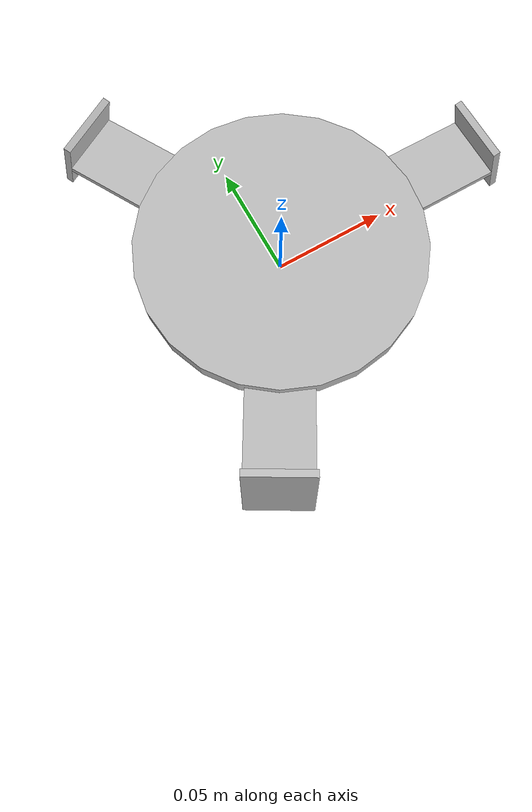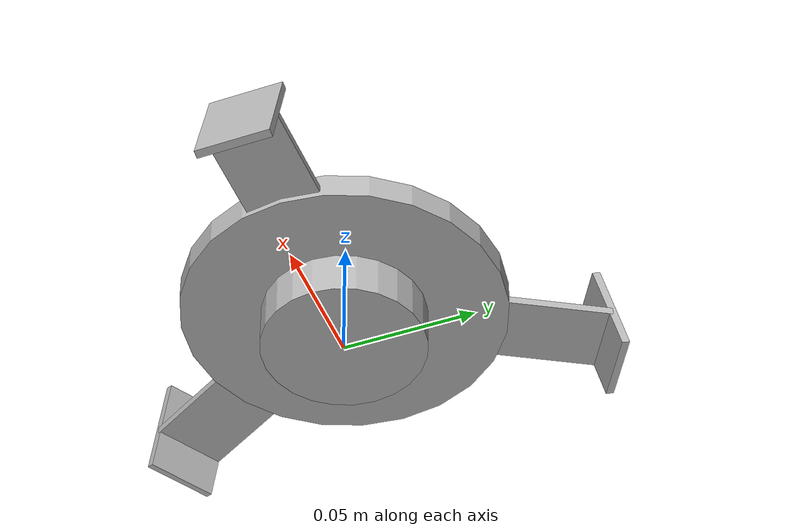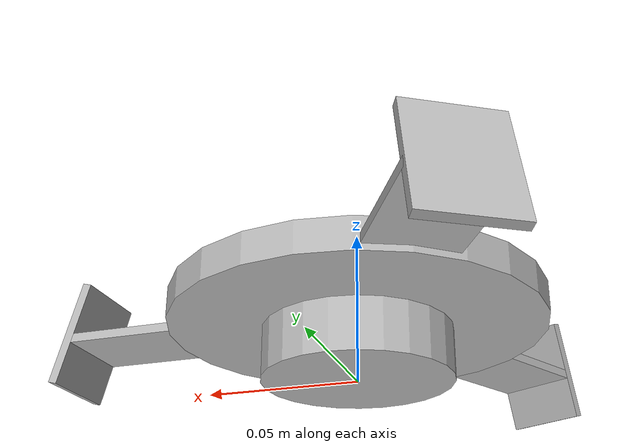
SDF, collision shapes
<?xml version="1.0" ?>
<sdf version="1.9">
  <model name="Tri Cam Mount">
    <link name="cam_mount_link">
      <visual name="cam_mount_visual">
        <geometry>
          <mesh>
            <uri>cam_mount_visual.glb</uri>
          </mesh>
        </geometry>
      </visual>
      <collision name="cam_mount_collider_cylinder">
        <pose>0.0 0.0 0.0215 0.0 -0.0 0.0</pose>
        <geometry>
          <cylinder>
            <radius>0.06</radius>
            <length>0.01</length>
          </cylinder>
        </geometry>
      </collision>
      <collision name="cam_mount_collider_cylinder.001">
        <pose>0.0 0.0 0.012638 0.0 -0.0 0.0</pose>
        <geometry>
          <cylinder>
            <radius>0.030383</radius>
            <length>0.025275</length>
          </cylinder>
        </geometry>
      </collision>
      <collision name="cam_mount003_collider_box">
        <pose>0.068974 0.000189 0.02 0.0 -0.0 0.0</pose>
        <geometry>
          <box>
            <size>0.055675 0.027622 0.003</size>
          </box>
        </geometry>
      </collision>
      <collision name="cam_mount003_collider_box.001">
        <pose>0.096142 0.000189 0.021981 0.0 1.308997 0.0</pose>
        <geometry>
          <box>
            <size>0.035256 0.027622 0.003</size>
          </box>
        </geometry>
      </collision>
      <collision name="cam_mount003_collider_box.002">
        <pose>-0.034323 -0.059827 0.02 0.0 -0.0 -2.094395</pose>
        <geometry>
          <box>
            <size>0.055675 0.027622 0.003</size>
          </box>
        </geometry>
      </collision>
      <collision name="cam_mount003_collider_box.003">
        <pose>-0.047908 -0.083356 0.021981 0.0 1.308997 -2.094395</pose>
        <geometry>
          <box>
            <size>0.035256 0.027622 0.003</size>
          </box>
        </geometry>
      </collision>
      <collision name="cam_mount003_collider_box.004">
        <pose>-0.03465 0.059639 0.02 0.0 -0.0 -4.18879</pose>
        <geometry>
          <box>
            <size>0.055675 0.027622 0.003</size>
          </box>
        </geometry>
      </collision>
      <collision name="cam_mount003_collider_box.005">
        <pose>-0.048235 0.083167 0.021981 0.0 1.308997 -4.18879</pose>
        <geometry>
          <box>
            <size>0.035256 0.027622 0.003</size>
          </box>
        </geometry>
      </collision>
    </link>
  </model>
</sdf>
